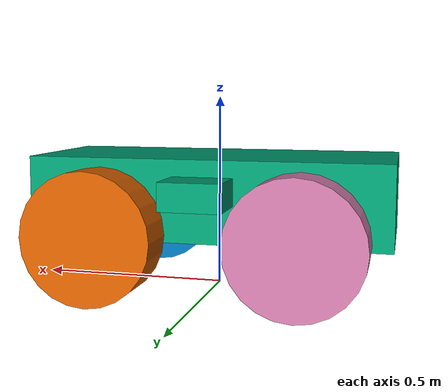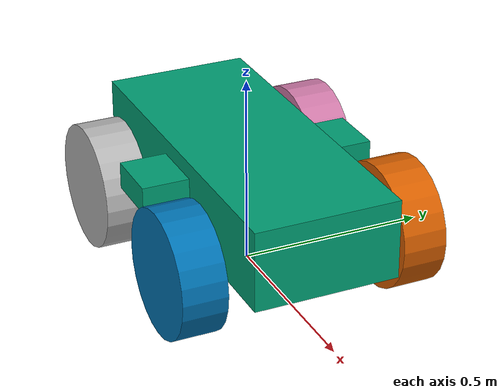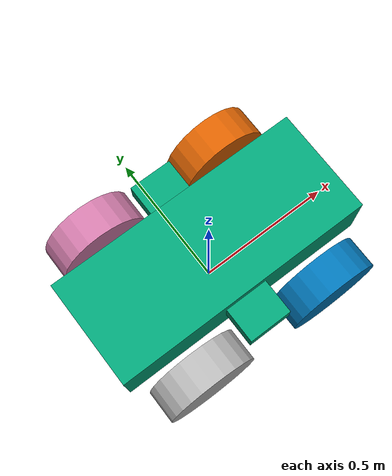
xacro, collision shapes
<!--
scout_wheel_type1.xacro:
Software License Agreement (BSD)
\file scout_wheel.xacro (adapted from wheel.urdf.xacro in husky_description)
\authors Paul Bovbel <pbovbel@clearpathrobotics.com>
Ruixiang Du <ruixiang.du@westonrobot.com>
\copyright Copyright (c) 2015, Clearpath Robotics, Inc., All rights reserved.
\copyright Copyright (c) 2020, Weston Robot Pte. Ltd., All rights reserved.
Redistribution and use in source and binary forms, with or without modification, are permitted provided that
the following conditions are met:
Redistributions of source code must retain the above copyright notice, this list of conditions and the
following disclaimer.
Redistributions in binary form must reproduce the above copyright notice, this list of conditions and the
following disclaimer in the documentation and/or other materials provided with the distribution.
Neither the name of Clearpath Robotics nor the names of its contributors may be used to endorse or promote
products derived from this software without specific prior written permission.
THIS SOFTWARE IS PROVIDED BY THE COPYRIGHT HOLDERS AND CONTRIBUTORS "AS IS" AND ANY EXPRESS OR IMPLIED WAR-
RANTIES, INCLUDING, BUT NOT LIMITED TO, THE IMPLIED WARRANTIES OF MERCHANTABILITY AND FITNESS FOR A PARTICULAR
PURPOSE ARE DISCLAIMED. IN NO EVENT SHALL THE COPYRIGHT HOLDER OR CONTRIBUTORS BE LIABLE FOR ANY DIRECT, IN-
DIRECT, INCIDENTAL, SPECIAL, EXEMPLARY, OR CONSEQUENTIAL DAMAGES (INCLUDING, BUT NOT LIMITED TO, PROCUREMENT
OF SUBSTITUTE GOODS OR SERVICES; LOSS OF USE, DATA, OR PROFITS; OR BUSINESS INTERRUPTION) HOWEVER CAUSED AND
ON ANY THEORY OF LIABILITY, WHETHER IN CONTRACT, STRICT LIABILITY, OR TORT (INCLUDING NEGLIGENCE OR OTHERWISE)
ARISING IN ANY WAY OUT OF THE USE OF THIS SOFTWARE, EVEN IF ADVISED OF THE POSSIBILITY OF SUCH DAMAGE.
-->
<?xml version="1.0"?>

<robot name="scout_v2" xmlns:xacro="http://ros.org/wiki/xacro">

	<!-- odometry source: world ground truth or wheels encoders -->
	<xacro:arg name="odometry_source" default="ground_truth" />

	<!-- load gazebo xacro -->
	<xacro:arg name="load_gazebo" default="true" />

	<xacro:arg name="simulation" default="true" />

	<xacro:include filename="$(find robot_description)/urdf/mobile_robot/scout_v2.urdf.xacro" />
	<xacro:scout_v2 odometry_source="$(arg odometry_source)" load_gazebo="$(arg load_gazebo)" />

	<xacro:unless value="$(arg simulation)">

		<!-- addition of OS1 sensor when loading the real Scout -->
		<xacro:include filename="$(find robot_description)/urdf/sensors/os1.urdf" />

		<joint name="os1_joint" type="fixed">
			<origin xyz="0.2 0.0 0.64" rpy="0.0 0.0 0.0" />
			<parent link="mobile_robot_base_link" />
			<child link="os_sensor" />
		</joint>

	</xacro:unless>

</robot>

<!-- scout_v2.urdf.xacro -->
<robot name="scout_v2" xmlns:xacro="http://ros.org/wiki/xacro">

	<xacro:macro name="scout_v2" params="odometry_source load_gazebo">

		<!-- Variables -->

		<!-- Collision boxes geometries -->
		<xacro:property name="base_x_size" value="0.9250000" />
		<xacro:property name="base_y_size" value="0.380000" />
		<xacro:property name="base_z_size" value="0.210000" />

		<!-- vehicle geometries -->
		<xacro:property name="wheelbase" value="0.498" />
		<xacro:property name="track" value="0.58306" />
		<xacro:property name="wheel_vertical_offset" value="-0.0702" />

		<xacro:property name="wheel_length" value="1.1653e-01" />
		<xacro:property name="wheel_radius" value="1.6459e-01" />

		<!-- virtual joints to link to ground and to odom -->
		<link name="base_footprint" />

		<joint name="base_footprint_to_base_link" type="fixed">
			<origin xyz="0 0 ${wheel_radius - wheel_vertical_offset}" rpy="0 0 0" />
			<parent link="base_footprint" />
			<child link="base_link" />
		</joint>

		<link name="base_link" />

		<joint name="base_link_to_mobile_robot" type="fixed">
			<origin xyz="0 0 0" rpy="0 0 0" />
			<parent link="base_link" />
			<child link="mobile_robot_base_link" />
		</joint>

		<!-- Base link -->
		<link name="mobile_robot_base_link">
			<visual>
				<origin xyz="0 0 0" rpy="0 0 0" />
				<geometry>
					<mesh
						filename="file://$(find robot_description)/meshes/mobile_robot/mobile_robot_base_link.dae" />
				</geometry>
			</visual>
			<collision>
				<origin xyz="0 0 0.008" rpy="0 0 0" />
				<geometry>
					<box size="${base_x_size} ${base_y_size} ${base_z_size}" />
				</geometry>
			</collision>
			<collision>
				<origin xyz="0 0 ${base_z_size/6}" rpy="0 0 0" />
				<geometry>
					<box size="${base_x_size/6} ${base_y_size*1.65} ${base_z_size/3}" />
				</geometry>
			</collision>
		</link>

		<link name="inertial_link">
			<inertial>
				<mass value="50" />
				<origin xyz="0.0 0.0 0.0" />
				<inertia ixx="2.288641" ixy="0" ixz="0" iyy="5.103976" iyz="0" izz="3.431465" />
			</inertial>
		</link>

		<joint name="inertial_joint" type="fixed">
			<origin xyz="0 0 0" rpy="0 0 0" />
			<parent link="mobile_robot_base_link" />
			<child link="inertial_link" />
		</joint>

		<!-- Scout wheel macros -->
		<xacro:include filename="$(find robot_description)/urdf/mobile_robot/scout_wheel_type1.xacro" />
		<xacro:include filename="$(find robot_description)/urdf/mobile_robot/scout_wheel_type2.xacro" />
		<!-- wheel labeled from 0 to 3, conter-clockwise, starting from front right wheel -->
		<!-- motor 1 and 2 (left side) are mechanically installed in a reversed direction -->
		<xacro:scout_wheel_type1 wheel_prefix="front_right" x="${wheelbase/2}" y="${-track/2}"
			z="${wheel_vertical_offset}" phi="0" />

		<xacro:scout_wheel_type2 wheel_prefix="front_left" x="${wheelbase/2}" y="${track/2}"
			z="${wheel_vertical_offset}" phi="0" />

		<xacro:scout_wheel_type1 wheel_prefix="rear_left" x="${-wheelbase/2}" y="${track/2}"
			z="${wheel_vertical_offset}" phi="0" />

		<xacro:scout_wheel_type2 wheel_prefix="rear_right" x="${-wheelbase/2}" y="${-track/2}"
			z="${wheel_vertical_offset}" phi="0" />

		<link name="front_mount" />

		<joint name="front_mount_joint" type="fixed">
			<origin xyz="0.325 0.0 0.112701" rpy="0 0 0" />
			<parent link="mobile_robot_base_link" />
			<child link="front_mount" />
		</joint>

		<link name="rear_mount" />

		<joint name="rear_mount_joint" type="fixed">
			<origin xyz="-0.325 0.0 0.112701" rpy="0 0 0" />
			<parent link="mobile_robot_base_link" />
			<child link="rear_mount" />
		</joint>

		<!-- Gazebo definitions  -->
		<xacro:if value="${load_gazebo}">
			<xacro:include filename="$(find robot_description)/urdf/mobile_robot/scout_v2.gazebo" />
		</xacro:if>

	</xacro:macro>

</robot>

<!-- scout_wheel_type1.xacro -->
<robot xmlns:xacro="http://ros.org/wiki/xacro" name="scout_v2">

	<xacro:macro name="scout_wheel_type1" params="wheel_prefix x y z phi">

		<link name="${wheel_prefix}_wheel_link">
			<inertial>
				<mass value="8" />
				<origin xyz="0 0 0" />
				<inertia ixx="0.1171" ixy="0" ixz="0" iyy="0.1361" iyz="0" izz="0.1171" />
			</inertial>
			<visual>
				<origin xyz="0 0 0" rpy="0 0 0" />
				<geometry>
					<mesh filename="file://$(find robot_description)/meshes/mobile_robot/wheel_type1.dae" />
				</geometry>
			</visual>
			<collision>
				<origin xyz="0 0 0" rpy="${pi/2} 0 0" />
				<geometry>
					<cylinder length="${wheel_length}" radius="${wheel_radius}" />
				</geometry>
				<surface>
					<contact>
						<ode>
							<min_depth>0.001</min_depth>
							<kp>1000000000.0</kp>
							<kd>0.0</kd>
						</ode>
					</contact>
					<friction>
						<ode>
							<mu>0.9</mu>
							<mu2>0.7</mu2>
							<fdir1>1 0 0</fdir1>
						</ode>
					</friction>
				</surface>
			</collision>
		</link>

		<!-- if gazebo is loaded, simulate the robot wheel rotations and broadcast the join states-->
		<xacro:if value="$(arg load_gazebo)">
			<joint name="${wheel_prefix}_wheel" type="continuous">
				<parent link="mobile_robot_base_link" />
				<child link="${wheel_prefix}_wheel_link" />
				<origin xyz="${x} ${y} ${z}" rpy="${phi} 0.0 0.0" />
				<axis xyz="0 1 0" rpy="0 0 0" />
				<dynamics damping="0.0" friction="20" />
			</joint>
		</xacro:if>

		<!-- if real robot is loaded, fixed wheels are used because no joint broadcasters are available -->
		<xacro:unless value="$(arg load_gazebo)">
			<joint name="${wheel_prefix}_wheel" type="fixed">
				<parent link="mobile_robot_base_link" />
				<child link="${wheel_prefix}_wheel_link" />
				<origin xyz="${x} ${y} ${z}" rpy="${phi} 0.0 0.0" />
				<axis xyz="0 1 0" rpy="0 0 0" />
			</joint>
		</xacro:unless>

	</xacro:macro>

</robot>

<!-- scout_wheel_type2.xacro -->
<robot xmlns:xacro="http://ros.org/wiki/xacro" name="scout_v2">

	<xacro:macro name="scout_wheel_type2" params="wheel_prefix x y z phi">

		<link name="${wheel_prefix}_wheel_link">
			<inertial>
				<mass value="8" />
				<origin xyz="0 0 0" />
				<inertia ixx="0.1171" ixy="0" ixz="0" iyy="0.1361" iyz="0" izz="0.1171" />
			</inertial>
			<visual>
				<origin xyz="0 0 0" rpy="0 0 0" />
				<geometry>
					<mesh filename="file://$(find robot_description)/meshes/mobile_robot/wheel_type2.dae" />
				</geometry>
			</visual>
			<collision>
				<origin xyz="0 0 0" rpy="${pi/2} 0 0" />
				<geometry>
					<cylinder length="${wheel_length}" radius="${wheel_radius}" />
				</geometry>
				<surface>
					<contact>
						<ode>
							<min_depth>0.001</min_depth>
							<kp>1000000000.0</kp>
							<kd>0.0</kd>
						</ode>
					</contact>
					<friction>
						<ode>
							<mu>0.9</mu>
							<mu2>0.7</mu2>
							<fdir1>1 0 0</fdir1>
						</ode>
					</friction>
				</surface>
			</collision>
		</link>

		<!-- if gazebo is loaded, simulate the robot wheel rotations and broadcast the join states-->
		<xacro:if value="$(arg load_gazebo)">
			<joint name="${wheel_prefix}_wheel" type="continuous">
				<parent link="mobile_robot_base_link" />
				<child link="${wheel_prefix}_wheel_link" />
				<origin xyz="${x} ${y} ${z}" rpy="${phi} 0.0 0.0" />
				<axis xyz="0 1 0" rpy="0 0 0" />
				<dynamics damping="0.0" friction="20" />
			</joint>
		</xacro:if>

		<!-- if real robot is loaded, fixed wheels are used because no joint broadcasters are available -->
		<xacro:unless value="$(arg load_gazebo)">
			<joint name="${wheel_prefix}_wheel" type="fixed">
				<parent link="mobile_robot_base_link" />
				<child link="${wheel_prefix}_wheel_link" />
				<origin xyz="${x} ${y} ${z}" rpy="${phi} 0.0 0.0" />
				<axis xyz="0 1 0" rpy="0 0 0" />
			</joint>
		</xacro:unless>

	</xacro:macro>

</robot>
